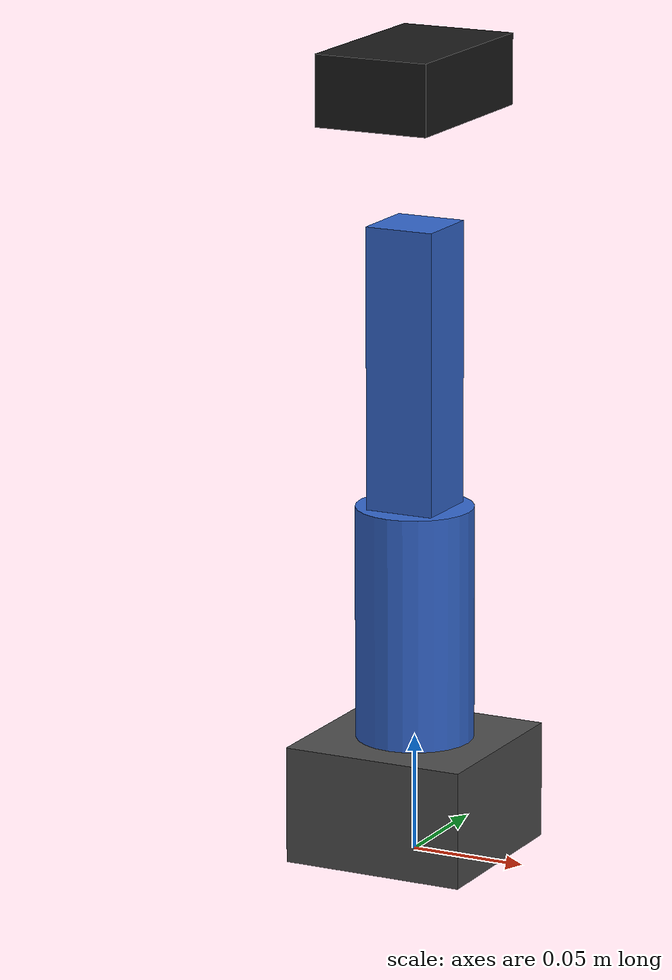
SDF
<?xml version="1.0"?>
<sdf version="1.8">
  <model name="mycobot_arm">
    <static>false</static>

    <!-- Arm Base (mounted on rover) -->
    <link name="arm_base">
      <pose>0 0 0.025 0 0 0</pose>
      <inertial>
        <mass>0.5</mass>
        <inertia>
          <ixx>0.001</ixx>
          <iyy>0.001</iyy>
          <izz>0.001</izz>
        </inertia>
      </inertial>
      <visual name="visual">
        <geometry>
          <box>
            <size>0.08 0.08 0.05</size>
          </box>
        </geometry>
        <material>
          <ambient>0.3 0.3 0.3 1</ambient>
          <diffuse>0.3 0.3 0.3 1</diffuse>
        </material>
      </visual>
      <collision name="collision">
        <geometry>
          <box>
            <size>0.08 0.08 0.05</size>
          </box>
        </geometry>
      </collision>
    </link>

    <!-- Arm Link 1 (rotating column) -->
    <link name="arm_link1">
      <pose>0 0 0.1 0 0 0</pose>
      <inertial>
        <mass>0.3</mass>
        <inertia>
          <ixx>0.0005</ixx>
          <iyy>0.0005</iyy>
          <izz>0.0001</izz>
        </inertia>
      </inertial>
      <visual name="visual">
        <geometry>
          <cylinder>
            <radius>0.025</radius>
            <length>0.1</length>
          </cylinder>
        </geometry>
        <material>
          <ambient>0.2 0.4 0.8 1</ambient>
          <diffuse>0.2 0.4 0.8 1</diffuse>
        </material>
      </visual>
      <collision name="collision">
        <geometry>
          <cylinder>
            <radius>0.025</radius>
            <length>0.1</length>
          </cylinder>
        </geometry>
      </collision>
    </link>

    <joint name="arm_joint1" type="revolute">
      <parent>arm_base</parent>
      <child>arm_link1</child>
      <axis>
        <xyz>0 0 1</xyz>
        <limit>
          <lower>-3.14</lower>
          <upper>3.14</upper>
          <effort>10</effort>
          <velocity>1.0</velocity>
        </limit>
      </axis>
    </joint>

    <!-- Arm Link 2 (shoulder) -->
    <link name="arm_link2">
      <pose>0 0 0.21 0 0 0</pose>
      <inertial>
        <mass>0.25</mass>
        <inertia>
          <ixx>0.0003</ixx>
          <iyy>0.0003</iyy>
          <izz>0.0001</izz>
        </inertia>
      </inertial>
      <visual name="visual">
        <geometry>
          <box>
            <size>0.03 0.03 0.12</size>
          </box>
        </geometry>
        <material>
          <ambient>0.2 0.4 0.8 1</ambient>
          <diffuse>0.2 0.4 0.8 1</diffuse>
        </material>
      </visual>
      <collision name="collision">
        <geometry>
          <box>
            <size>0.03 0.03 0.12</size>
          </box>
        </geometry>
      </collision>
    </link>

    <joint name="arm_joint2" type="revolute">
      <parent>arm_link1</parent>
      <child>arm_link2</child>
      <pose>0 0 -0.06 0 0 0</pose>
      <axis>
        <xyz>0 1 0</xyz>
        <limit>
          <lower>-1.57</lower>
          <upper>1.57</upper>
          <effort>10</effort>
          <velocity>1.0</velocity>
        </limit>
      </axis>
    </joint>

    <!-- Gripper -->
    <link name="gripper">
      <pose>0 0 0.33 0 0 0</pose>
      <inertial>
        <mass>0.1</mass>
        <inertia>
          <ixx>0.0001</ixx>
          <iyy>0.0001</iyy>
          <izz>0.0001</izz>
        </inertia>
      </inertial>
      <visual name="visual">
        <geometry>
          <box>
            <size>0.05 0.08 0.03</size>
          </box>
        </geometry>
        <material>
          <ambient>0.1 0.1 0.1 1</ambient>
          <diffuse>0.1 0.1 0.1 1</diffuse>
        </material>
      </visual>
      <collision name="collision">
        <geometry>
          <box>
            <size>0.05 0.08 0.03</size>
          </box>
        </geometry>
      </collision>
    </link>

    <joint name="gripper_joint" type="fixed">
      <parent>arm_link2</parent>
      <child>gripper</child>
      <pose>0 0 -0.015 0 0 0</pose>
    </joint>

  </model>
</sdf>
